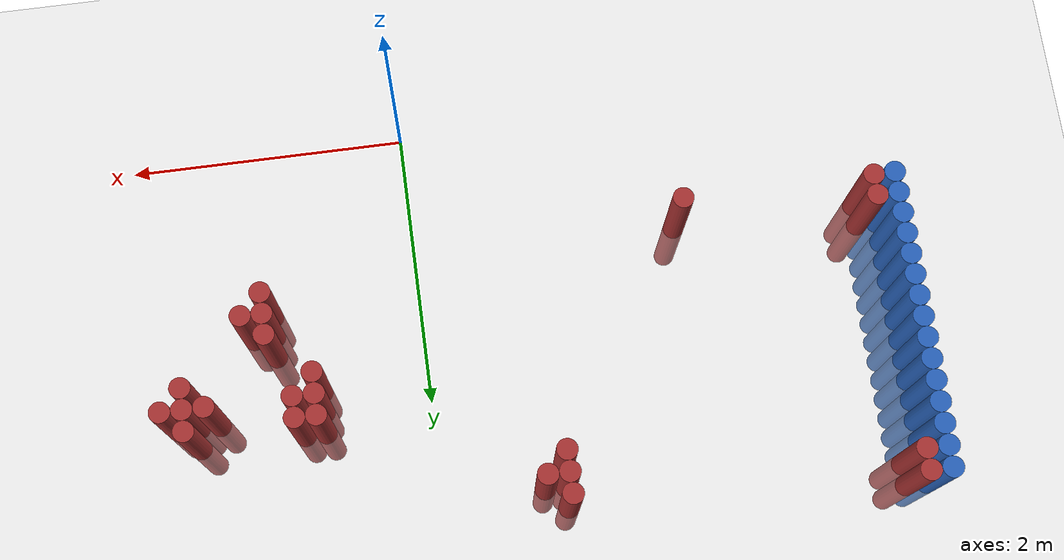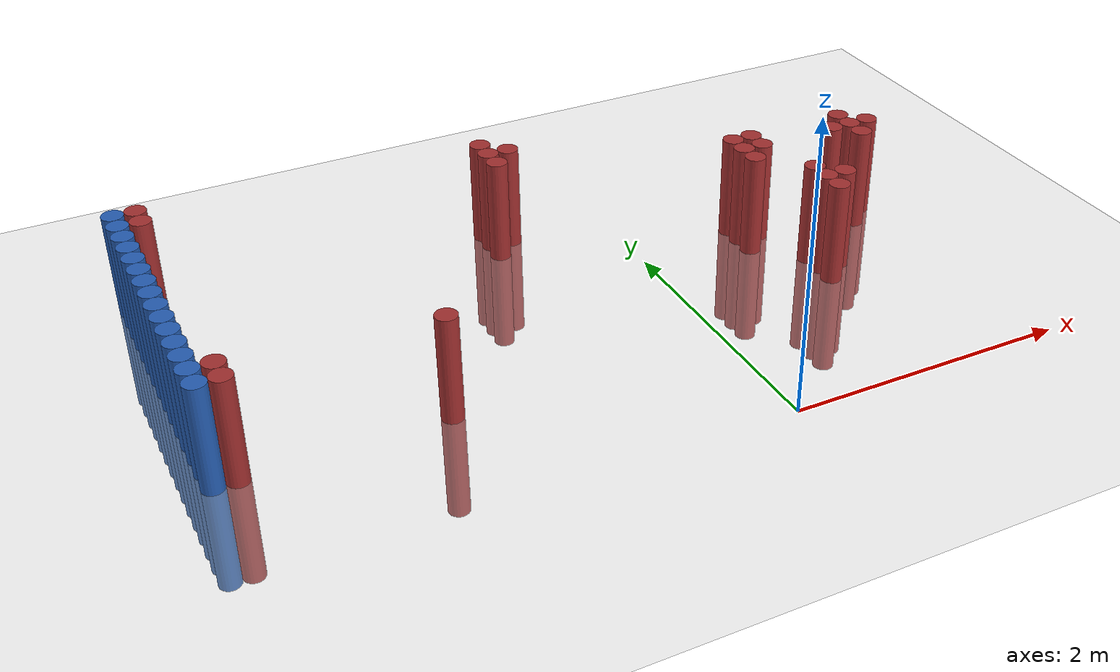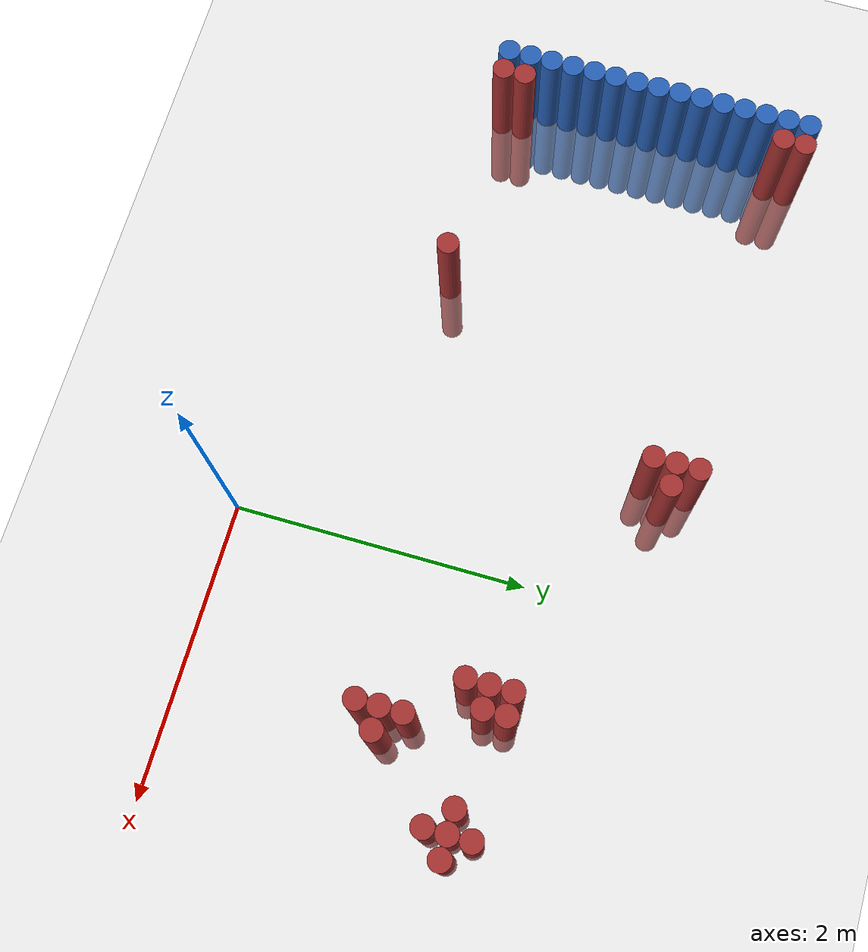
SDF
<sdf version="1.6">
 <world name="default">
  <model name="ground_plane">
   <static>1</static>
   <link name="link">
    <collision name="collision">
     <geometry><plane><normal>0 0 1</normal><size>100 100</size></plane></geometry>
     <surface><friction><ode><mu>100</mu><mu2>50</mu2></ode></friction></surface>
    </collision>
    <visual name="visual">
     <cast_shadows>0</cast_shadows>
     <geometry><plane><normal>0 0 1</normal><size>100 100</size></plane></geometry>
     <material>
      <script><uri>file://media/materials/scripts/gazebo.material</uri><name>Gazebo/Grey</name></script>
     </material>
    </visual>
   </link>
  </model>
  <model name="unit_cylinder_127">
   <static>1</static>
   <pose>-3.425000 0.925000 0.000000 0.000000 0.000000 0.000000</pose>
   <link name="link">
    <inertial>
     <mass>1</mass>
     <inertia><ixx>0.145833</ixx><ixy>0</ixy><ixz>0</ixz><iyy>0.145833</iyy><iyz>0</iyz><izz>0.125</izz></inertia>
    </inertial>
    <collision name="collision">
     <geometry><cylinder><radius>0.075000</radius><length>1.5</length></cylinder></geometry>
    </collision>
    <visual name="visual">
     <geometry><cylinder><radius>0.075000</radius><length>1.5</length></cylinder></geometry>
     <material>
      <ambient>0.152000 0.379000 0.720000 1</ambient>
      <diffuse>0.152000 0.379000 0.720000 1</diffuse>
     </material>
     <material>
      <script><name>Gazebo/Grey</name><uri>file://media/materials/scripts/gazebo.material</uri></script>
     </material>
    </visual>
   </link>
  </model>
  <model name="unit_cylinder_129">
   <static>1</static>
   <pose>-3.425000 1.075000 0.000000 0.000000 0.000000 0.000000</pose>
   <link name="link">
    <inertial>
     <mass>1</mass>
     <inertia><ixx>0.145833</ixx><ixy>0</ixy><ixz>0</ixz><iyy>0.145833</iyy><iyz>0</iyz><izz>0.125</izz></inertia>
    </inertial>
    <collision name="collision">
     <geometry><cylinder><radius>0.075000</radius><length>1.5</length></cylinder></geometry>
    </collision>
    <visual name="visual">
     <geometry><cylinder><radius>0.075000</radius><length>1.5</length></cylinder></geometry>
     <material>
      <ambient>0.152000 0.379000 0.720000 1</ambient>
      <diffuse>0.152000 0.379000 0.720000 1</diffuse>
     </material>
     <material>
      <script><name>Gazebo/Grey</name><uri>file://media/materials/scripts/gazebo.material</uri></script>
     </material>
    </visual>
   </link>
  </model>
  <model name="unit_cylinder_131">
   <static>1</static>
   <pose>-3.425000 1.225000 0.000000 0.000000 0.000000 0.000000</pose>
   <link name="link">
    <inertial>
     <mass>1</mass>
     <inertia><ixx>0.145833</ixx><ixy>0</ixy><ixz>0</ixz><iyy>0.145833</iyy><iyz>0</iyz><izz>0.125</izz></inertia>
    </inertial>
    <collision name="collision">
     <geometry><cylinder><radius>0.075000</radius><length>1.5</length></cylinder></geometry>
    </collision>
    <visual name="visual">
     <geometry><cylinder><radius>0.075000</radius><length>1.5</length></cylinder></geometry>
     <material>
      <ambient>0.152000 0.379000 0.720000 1</ambient>
      <diffuse>0.152000 0.379000 0.720000 1</diffuse>
     </material>
     <material>
      <script><name>Gazebo/Grey</name><uri>file://media/materials/scripts/gazebo.material</uri></script>
     </material>
    </visual>
   </link>
  </model>
  <model name="unit_cylinder_133">
   <static>1</static>
   <pose>-3.425000 1.375000 0.000000 0.000000 0.000000 0.000000</pose>
   <link name="link">
    <inertial>
     <mass>1</mass>
     <inertia><ixx>0.145833</ixx><ixy>0</ixy><ixz>0</ixz><iyy>0.145833</iyy><iyz>0</iyz><izz>0.125</izz></inertia>
    </inertial>
    <collision name="collision">
     <geometry><cylinder><radius>0.075000</radius><length>1.5</length></cylinder></geometry>
    </collision>
    <visual name="visual">
     <geometry><cylinder><radius>0.075000</radius><length>1.5</length></cylinder></geometry>
     <material>
      <ambient>0.152000 0.379000 0.720000 1</ambient>
      <diffuse>0.152000 0.379000 0.720000 1</diffuse>
     </material>
     <material>
      <script><name>Gazebo/Grey</name><uri>file://media/materials/scripts/gazebo.material</uri></script>
     </material>
    </visual>
   </link>
  </model>
  <model name="unit_cylinder_135">
   <static>1</static>
   <pose>-3.425000 1.525000 0.000000 0.000000 0.000000 0.000000</pose>
   <link name="link">
    <inertial>
     <mass>1</mass>
     <inertia><ixx>0.145833</ixx><ixy>0</ixy><ixz>0</ixz><iyy>0.145833</iyy><iyz>0</iyz><izz>0.125</izz></inertia>
    </inertial>
    <collision name="collision">
     <geometry><cylinder><radius>0.075000</radius><length>1.5</length></cylinder></geometry>
    </collision>
    <visual name="visual">
     <geometry><cylinder><radius>0.075000</radius><length>1.5</length></cylinder></geometry>
     <material>
      <ambient>0.152000 0.379000 0.720000 1</ambient>
      <diffuse>0.152000 0.379000 0.720000 1</diffuse>
     </material>
     <material>
      <script><name>Gazebo/Grey</name><uri>file://media/materials/scripts/gazebo.material</uri></script>
     </material>
    </visual>
   </link>
  </model>
  <model name="unit_cylinder_137">
   <static>1</static>
   <pose>-3.425000 1.675000 0.000000 0.000000 0.000000 0.000000</pose>
   <link name="link">
    <inertial>
     <mass>1</mass>
     <inertia><ixx>0.145833</ixx><ixy>0</ixy><ixz>0</ixz><iyy>0.145833</iyy><iyz>0</iyz><izz>0.125</izz></inertia>
    </inertial>
    <collision name="collision">
     <geometry><cylinder><radius>0.075000</radius><length>1.5</length></cylinder></geometry>
    </collision>
    <visual name="visual">
     <geometry><cylinder><radius>0.075000</radius><length>1.5</length></cylinder></geometry>
     <material>
      <ambient>0.152000 0.379000 0.720000 1</ambient>
      <diffuse>0.152000 0.379000 0.720000 1</diffuse>
     </material>
     <material>
      <script><name>Gazebo/Grey</name><uri>file://media/materials/scripts/gazebo.material</uri></script>
     </material>
    </visual>
   </link>
  </model>
  <model name="unit_cylinder_139">
   <static>1</static>
   <pose>-3.425000 1.825000 0.000000 0.000000 0.000000 0.000000</pose>
   <link name="link">
    <inertial>
     <mass>1</mass>
     <inertia><ixx>0.145833</ixx><ixy>0</ixy><ixz>0</ixz><iyy>0.145833</iyy><iyz>0</iyz><izz>0.125</izz></inertia>
    </inertial>
    <collision name="collision">
     <geometry><cylinder><radius>0.075000</radius><length>1.5</length></cylinder></geometry>
    </collision>
    <visual name="visual">
     <geometry><cylinder><radius>0.075000</radius><length>1.5</length></cylinder></geometry>
     <material>
      <ambient>0.152000 0.379000 0.720000 1</ambient>
      <diffuse>0.152000 0.379000 0.720000 1</diffuse>
     </material>
     <material>
      <script><name>Gazebo/Grey</name><uri>file://media/materials/scripts/gazebo.material</uri></script>
     </material>
    </visual>
   </link>
  </model>
  <model name="unit_cylinder_141">
   <static>1</static>
   <pose>-3.425000 1.975000 0.000000 0.000000 0.000000 0.000000</pose>
   <link name="link">
    <inertial>
     <mass>1</mass>
     <inertia><ixx>0.145833</ixx><ixy>0</ixy><ixz>0</ixz><iyy>0.145833</iyy><iyz>0</iyz><izz>0.125</izz></inertia>
    </inertial>
    <collision name="collision">
     <geometry><cylinder><radius>0.075000</radius><length>1.5</length></cylinder></geometry>
    </collision>
    <visual name="visual">
     <geometry><cylinder><radius>0.075000</radius><length>1.5</length></cylinder></geometry>
     <material>
      <ambient>0.152000 0.379000 0.720000 1</ambient>
      <diffuse>0.152000 0.379000 0.720000 1</diffuse>
     </material>
     <material>
      <script><name>Gazebo/Grey</name><uri>file://media/materials/scripts/gazebo.material</uri></script>
     </material>
    </visual>
   </link>
  </model>
  <model name="unit_cylinder_143">
   <static>1</static>
   <pose>-3.425000 2.125000 0.000000 0.000000 0.000000 0.000000</pose>
   <link name="link">
    <inertial>
     <mass>1</mass>
     <inertia><ixx>0.145833</ixx><ixy>0</ixy><ixz>0</ixz><iyy>0.145833</iyy><iyz>0</iyz><izz>0.125</izz></inertia>
    </inertial>
    <collision name="collision">
     <geometry><cylinder><radius>0.075000</radius><length>1.5</length></cylinder></geometry>
    </collision>
    <visual name="visual">
     <geometry><cylinder><radius>0.075000</radius><length>1.5</length></cylinder></geometry>
     <material>
      <ambient>0.152000 0.379000 0.720000 1</ambient>
      <diffuse>0.152000 0.379000 0.720000 1</diffuse>
     </material>
     <material>
      <script><name>Gazebo/Grey</name><uri>file://media/materials/scripts/gazebo.material</uri></script>
     </material>
    </visual>
   </link>
  </model>
  <model name="unit_cylinder_145">
   <static>1</static>
   <pose>-3.425000 2.275000 0.000000 0.000000 0.000000 0.000000</pose>
   <link name="link">
    <inertial>
     <mass>1</mass>
     <inertia><ixx>0.145833</ixx><ixy>0</ixy><ixz>0</ixz><iyy>0.145833</iyy><iyz>0</iyz><izz>0.125</izz></inertia>
    </inertial>
    <collision name="collision">
     <geometry><cylinder><radius>0.075000</radius><length>1.5</length></cylinder></geometry>
    </collision>
    <visual name="visual">
     <geometry><cylinder><radius>0.075000</radius><length>1.5</length></cylinder></geometry>
     <material>
      <ambient>0.152000 0.379000 0.720000 1</ambient>
      <diffuse>0.152000 0.379000 0.720000 1</diffuse>
     </material>
     <material>
      <script><name>Gazebo/Grey</name><uri>file://media/materials/scripts/gazebo.material</uri></script>
     </material>
    </visual>
   </link>
  </model>
  <model name="unit_cylinder_147">
   <static>1</static>
   <pose>-3.425000 2.425000 0.000000 0.000000 0.000000 0.000000</pose>
   <link name="link">
    <inertial>
     <mass>1</mass>
     <inertia><ixx>0.145833</ixx><ixy>0</ixy><ixz>0</ixz><iyy>0.145833</iyy><iyz>0</iyz><izz>0.125</izz></inertia>
    </inertial>
    <collision name="collision">
     <geometry><cylinder><radius>0.075000</radius><length>1.5</length></cylinder></geometry>
    </collision>
    <visual name="visual">
     <geometry><cylinder><radius>0.075000</radius><length>1.5</length></cylinder></geometry>
     <material>
      <ambient>0.152000 0.379000 0.720000 1</ambient>
      <diffuse>0.152000 0.379000 0.720000 1</diffuse>
     </material>
     <material>
      <script><name>Gazebo/Grey</name><uri>file://media/materials/scripts/gazebo.material</uri></script>
     </material>
    </visual>
   </link>
  </model>
  <model name="unit_cylinder_149">
   <static>1</static>
   <pose>-3.425000 2.575000 0.000000 0.000000 0.000000 0.000000</pose>
   <link name="link">
    <inertial>
     <mass>1</mass>
     <inertia><ixx>0.145833</ixx><ixy>0</ixy><ixz>0</ixz><iyy>0.145833</iyy><iyz>0</iyz><izz>0.125</izz></inertia>
    </inertial>
    <collision name="collision">
     <geometry><cylinder><radius>0.075000</radius><length>1.5</length></cylinder></geometry>
    </collision>
    <visual name="visual">
     <geometry><cylinder><radius>0.075000</radius><length>1.5</length></cylinder></geometry>
     <material>
      <ambient>0.152000 0.379000 0.720000 1</ambient>
      <diffuse>0.152000 0.379000 0.720000 1</diffuse>
     </material>
     <material>
      <script><name>Gazebo/Grey</name><uri>file://media/materials/scripts/gazebo.material</uri></script>
     </material>
    </visual>
   </link>
  </model>
  <model name="unit_cylinder_151">
   <static>1</static>
   <pose>-3.425000 2.725000 0.000000 0.000000 0.000000 0.000000</pose>
   <link name="link">
    <inertial>
     <mass>1</mass>
     <inertia><ixx>0.145833</ixx><ixy>0</ixy><ixz>0</ixz><iyy>0.145833</iyy><iyz>0</iyz><izz>0.125</izz></inertia>
    </inertial>
    <collision name="collision">
     <geometry><cylinder><radius>0.075000</radius><length>1.5</length></cylinder></geometry>
    </collision>
    <visual name="visual">
     <geometry><cylinder><radius>0.075000</radius><length>1.5</length></cylinder></geometry>
     <material>
      <ambient>0.152000 0.379000 0.720000 1</ambient>
      <diffuse>0.152000 0.379000 0.720000 1</diffuse>
     </material>
     <material>
      <script><name>Gazebo/Grey</name><uri>file://media/materials/scripts/gazebo.material</uri></script>
     </material>
    </visual>
   </link>
  </model>
  <model name="unit_cylinder_153">
   <static>1</static>
   <pose>-3.425000 2.875000 0.000000 0.000000 0.000000 0.000000</pose>
   <link name="link">
    <inertial>
     <mass>1</mass>
     <inertia><ixx>0.145833</ixx><ixy>0</ixy><ixz>0</ixz><iyy>0.145833</iyy><iyz>0</iyz><izz>0.125</izz></inertia>
    </inertial>
    <collision name="collision">
     <geometry><cylinder><radius>0.075000</radius><length>1.5</length></cylinder></geometry>
    </collision>
    <visual name="visual">
     <geometry><cylinder><radius>0.075000</radius><length>1.5</length></cylinder></geometry>
     <material>
      <ambient>0.152000 0.379000 0.720000 1</ambient>
      <diffuse>0.152000 0.379000 0.720000 1</diffuse>
     </material>
     <material>
      <script><name>Gazebo/Grey</name><uri>file://media/materials/scripts/gazebo.material</uri></script>
     </material>
    </visual>
   </link>
  </model>
  <model name="unit_cylinder_155">
   <static>1</static>
   <pose>-3.425000 3.025000 0.000000 0.000000 0.000000 0.000000</pose>
   <link name="link">
    <inertial>
     <mass>1</mass>
     <inertia><ixx>0.145833</ixx><ixy>0</ixy><ixz>0</ixz><iyy>0.145833</iyy><iyz>0</iyz><izz>0.125</izz></inertia>
    </inertial>
    <collision name="collision">
     <geometry><cylinder><radius>0.075000</radius><length>1.5</length></cylinder></geometry>
    </collision>
    <visual name="visual">
     <geometry><cylinder><radius>0.075000</radius><length>1.5</length></cylinder></geometry>
     <material>
      <ambient>0.152000 0.379000 0.720000 1</ambient>
      <diffuse>0.152000 0.379000 0.720000 1</diffuse>
     </material>
     <material>
      <script><name>Gazebo/Grey</name><uri>file://media/materials/scripts/gazebo.material</uri></script>
     </material>
    </visual>
   </link>
  </model>
  <model name="unit_cylinder_227">
   <static>1</static>
   <pose>-3.425000 0.925000 0.000000 0.000000 0.000000 0.000000</pose>
   <link name="link">
    <inertial>
     <mass>1</mass>
     <inertia><ixx>0.145833</ixx><ixy>0</ixy><ixz>0</ixz><iyy>0.145833</iyy><iyz>0</iyz><izz>0.125</izz></inertia>
    </inertial>
    <collision name="collision">
     <geometry><cylinder><radius>0.075000</radius><length>1.5</length></cylinder></geometry>
    </collision>
    <visual name="visual">
     <geometry><cylinder><radius>0.075000</radius><length>1.5</length></cylinder></geometry>
     <material>
      <ambient>0.152000 0.379000 0.720000 1</ambient>
      <diffuse>0.152000 0.379000 0.720000 1</diffuse>
     </material>
     <material>
      <script><name>Gazebo/Grey</name><uri>file://media/materials/scripts/gazebo.material</uri></script>
     </material>
    </visual>
   </link>
  </model>
  <model name="unit_cylinder_228">
   <static>1</static>
   <pose>-3.425000 1.075000 0.000000 0.000000 0.000000 0.000000</pose>
   <link name="link">
    <inertial>
     <mass>1</mass>
     <inertia><ixx>0.145833</ixx><ixy>0</ixy><ixz>0</ixz><iyy>0.145833</iyy><iyz>0</iyz><izz>0.125</izz></inertia>
    </inertial>
    <collision name="collision">
     <geometry><cylinder><radius>0.075000</radius><length>1.5</length></cylinder></geometry>
    </collision>
    <visual name="visual">
     <geometry><cylinder><radius>0.075000</radius><length>1.5</length></cylinder></geometry>
     <material>
      <ambient>0.152000 0.379000 0.720000 1</ambient>
      <diffuse>0.152000 0.379000 0.720000 1</diffuse>
     </material>
     <material>
      <script><name>Gazebo/Grey</name><uri>file://media/materials/scripts/gazebo.material</uri></script>
     </material>
    </visual>
   </link>
  </model>
  <model name="unit_cylinder_229">
   <static>1</static>
   <pose>-3.425000 1.225000 0.000000 0.000000 0.000000 0.000000</pose>
   <link name="link">
    <inertial>
     <mass>1</mass>
     <inertia><ixx>0.145833</ixx><ixy>0</ixy><ixz>0</ixz><iyy>0.145833</iyy><iyz>0</iyz><izz>0.125</izz></inertia>
    </inertial>
    <collision name="collision">
     <geometry><cylinder><radius>0.075000</radius><length>1.5</length></cylinder></geometry>
    </collision>
    <visual name="visual">
     <geometry><cylinder><radius>0.075000</radius><length>1.5</length></cylinder></geometry>
     <material>
      <ambient>0.152000 0.379000 0.720000 1</ambient>
      <diffuse>0.152000 0.379000 0.720000 1</diffuse>
     </material>
     <material>
      <script><name>Gazebo/Grey</name><uri>file://media/materials/scripts/gazebo.material</uri></script>
     </material>
    </visual>
   </link>
  </model>
  <model name="unit_cylinder_230">
   <static>1</static>
   <pose>-3.425000 1.375000 0.000000 0.000000 0.000000 0.000000</pose>
   <link name="link">
    <inertial>
     <mass>1</mass>
     <inertia><ixx>0.145833</ixx><ixy>0</ixy><ixz>0</ixz><iyy>0.145833</iyy><iyz>0</iyz><izz>0.125</izz></inertia>
    </inertial>
    <collision name="collision">
     <geometry><cylinder><radius>0.075000</radius><length>1.5</length></cylinder></geometry>
    </collision>
    <visual name="visual">
     <geometry><cylinder><radius>0.075000</radius><length>1.5</length></cylinder></geometry>
     <material>
      <ambient>0.152000 0.379000 0.720000 1</ambient>
      <diffuse>0.152000 0.379000 0.720000 1</diffuse>
     </material>
     <material>
      <script><name>Gazebo/Grey</name><uri>file://media/materials/scripts/gazebo.material</uri></script>
     </material>
    </visual>
   </link>
  </model>
  <model name="unit_cylinder_231">
   <static>1</static>
   <pose>-3.425000 1.525000 0.000000 0.000000 0.000000 0.000000</pose>
   <link name="link">
    <inertial>
     <mass>1</mass>
     <inertia><ixx>0.145833</ixx><ixy>0</ixy><ixz>0</ixz><iyy>0.145833</iyy><iyz>0</iyz><izz>0.125</izz></inertia>
    </inertial>
    <collision name="collision">
     <geometry><cylinder><radius>0.075000</radius><length>1.5</length></cylinder></geometry>
    </collision>
    <visual name="visual">
     <geometry><cylinder><radius>0.075000</radius><length>1.5</length></cylinder></geometry>
     <material>
      <ambient>0.152000 0.379000 0.720000 1</ambient>
      <diffuse>0.152000 0.379000 0.720000 1</diffuse>
     </material>
     <material>
      <script><name>Gazebo/Grey</name><uri>file://media/materials/scripts/gazebo.material</uri></script>
     </material>
    </visual>
   </link>
  </model>
  <model name="unit_cylinder_232">
   <static>1</static>
   <pose>-3.425000 1.675000 0.000000 0.000000 0.000000 0.000000</pose>
   <link name="link">
    <inertial>
     <mass>1</mass>
     <inertia><ixx>0.145833</ixx><ixy>0</ixy><ixz>0</ixz><iyy>0.145833</iyy><iyz>0</iyz><izz>0.125</izz></inertia>
    </inertial>
    <collision name="collision">
     <geometry><cylinder><radius>0.075000</radius><length>1.5</length></cylinder></geometry>
    </collision>
    <visual name="visual">
     <geometry><cylinder><radius>0.075000</radius><length>1.5</length></cylinder></geometry>
     <material>
      <ambient>0.152000 0.379000 0.720000 1</ambient>
      <diffuse>0.152000 0.379000 0.720000 1</diffuse>
     </material>
     <material>
      <script><name>Gazebo/Grey</name><uri>file://media/materials/scripts/gazebo.material</uri></script>
     </material>
    </visual>
   </link>
  </model>
  <model name="unit_cylinder_233">
   <static>1</static>
   <pose>-3.425000 1.825000 0.000000 0.000000 0.000000 0.000000</pose>
   <link name="link">
    <inertial>
     <mass>1</mass>
     <inertia><ixx>0.145833</ixx><ixy>0</ixy><ixz>0</ixz><iyy>0.145833</iyy><iyz>0</iyz><izz>0.125</izz></inertia>
    </inertial>
    <collision name="collision">
     <geometry><cylinder><radius>0.075000</radius><length>1.5</length></cylinder></geometry>
    </collision>
    <visual name="visual">
     <geometry><cylinder><radius>0.075000</radius><length>1.5</length></cylinder></geometry>
     <material>
      <ambient>0.152000 0.379000 0.720000 1</ambient>
      <diffuse>0.152000 0.379000 0.720000 1</diffuse>
     </material>
     <material>
      <script><name>Gazebo/Grey</name><uri>file://media/materials/scripts/gazebo.material</uri></script>
     </material>
    </visual>
   </link>
  </model>
  <model name="unit_cylinder_234">
   <static>1</static>
   <pose>-3.425000 1.975000 0.000000 0.000000 0.000000 0.000000</pose>
   <link name="link">
    <inertial>
     <mass>1</mass>
     <inertia><ixx>0.145833</ixx><ixy>0</ixy><ixz>0</ixz><iyy>0.145833</iyy><iyz>0</iyz><izz>0.125</izz></inertia>
    </inertial>
    <collision name="collision">
     <geometry><cylinder><radius>0.075000</radius><length>1.5</length></cylinder></geometry>
    </collision>
    <visual name="visual">
     <geometry><cylinder><radius>0.075000</radius><length>1.5</length></cylinder></geometry>
     <material>
      <ambient>0.152000 0.379000 0.720000 1</ambient>
      <diffuse>0.152000 0.379000 0.720000 1</diffuse>
     </material>
     <material>
      <script><name>Gazebo/Grey</name><uri>file://media/materials/scripts/gazebo.material</uri></script>
     </material>
    </visual>
   </link>
  </model>
  <model name="unit_cylinder_235">
   <static>1</static>
   <pose>-3.425000 2.125000 0.000000 0.000000 0.000000 0.000000</pose>
   <link name="link">
    <inertial>
     <mass>1</mass>
     <inertia><ixx>0.145833</ixx><ixy>0</ixy><ixz>0</ixz><iyy>0.145833</iyy><iyz>0</iyz><izz>0.125</izz></inertia>
    </inertial>
    <collision name="collision">
     <geometry><cylinder><radius>0.075000</radius><length>1.5</length></cylinder></geometry>
    </collision>
    <visual name="visual">
     <geometry><cylinder><radius>0.075000</radius><length>1.5</length></cylinder></geometry>
     <material>
      <ambient>0.152000 0.379000 0.720000 1</ambient>
      <diffuse>0.152000 0.379000 0.720000 1</diffuse>
     </material>
     <material>
      <script><name>Gazebo/Grey</name><uri>file://media/materials/scripts/gazebo.material</uri></script>
     </material>
    </visual>
   </link>
  </model>
  <model name="unit_cylinder_236">
   <static>1</static>
   <pose>-3.425000 2.275000 0.000000 0.000000 0.000000 0.000000</pose>
   <link name="link">
    <inertial>
     <mass>1</mass>
     <inertia><ixx>0.145833</ixx><ixy>0</ixy><ixz>0</ixz><iyy>0.145833</iyy><iyz>0</iyz><izz>0.125</izz></inertia>
    </inertial>
    <collision name="collision">
     <geometry><cylinder><radius>0.075000</radius><length>1.5</length></cylinder></geometry>
    </collision>
    <visual name="visual">
     <geometry><cylinder><radius>0.075000</radius><length>1.5</length></cylinder></geometry>
     <material>
      <ambient>0.152000 0.379000 0.720000 1</ambient>
      <diffuse>0.152000 0.379000 0.720000 1</diffuse>
     </material>
     <material>
      <script><name>Gazebo/Grey</name><uri>file://media/materials/scripts/gazebo.material</uri></script>
     </material>
    </visual>
   </link>
  </model>
  <model name="unit_cylinder_237">
   <static>1</static>
   <pose>-3.425000 2.425000 0.000000 0.000000 0.000000 0.000000</pose>
   <link name="link">
    <inertial>
     <mass>1</mass>
     <inertia><ixx>0.145833</ixx><ixy>0</ixy><ixz>0</ixz><iyy>0.145833</iyy><iyz>0</iyz><izz>0.125</izz></inertia>
    </inertial>
    <collision name="collision">
     <geometry><cylinder><radius>0.075000</radius><length>1.5</length></cylinder></geometry>
    </collision>
    <visual name="visual">
     <geometry><cylinder><radius>0.075000</radius><length>1.5</length></cylinder></geometry>
     <material>
      <ambient>0.152000 0.379000 0.720000 1</ambient>
      <diffuse>0.152000 0.379000 0.720000 1</diffuse>
     </material>
     <material>
      <script><name>Gazebo/Grey</name><uri>file://media/materials/scripts/gazebo.material</uri></script>
     </material>
    </visual>
   </link>
  </model>
  <model name="unit_cylinder_238">
   <static>1</static>
   <pose>-3.425000 2.575000 0.000000 0.000000 0.000000 0.000000</pose>
   <link name="link">
    <inertial>
     <mass>1</mass>
     <inertia><ixx>0.145833</ixx><ixy>0</ixy><ixz>0</ixz><iyy>0.145833</iyy><iyz>0</iyz><izz>0.125</izz></inertia>
    </inertial>
    <collision name="collision">
     <geometry><cylinder><radius>0.075000</radius><length>1.5</length></cylinder></geometry>
    </collision>
    <visual name="visual">
     <geometry><cylinder><radius>0.075000</radius><length>1.5</length></cylinder></geometry>
     <material>
      <ambient>0.152000 0.379000 0.720000 1</ambient>
      <diffuse>0.152000 0.379000 0.720000 1</diffuse>
     </material>
     <material>
      <script><name>Gazebo/Grey</name><uri>file://media/materials/scripts/gazebo.material</uri></script>
     </material>
    </visual>
   </link>
  </model>
  <model name="unit_cylinder_239">
   <static>1</static>
   <pose>-3.425000 2.725000 0.000000 0.000000 0.000000 0.000000</pose>
   <link name="link">
    <inertial>
     <mass>1</mass>
     <inertia><ixx>0.145833</ixx><ixy>0</ixy><ixz>0</ixz><iyy>0.145833</iyy><iyz>0</iyz><izz>0.125</izz></inertia>
    </inertial>
    <collision name="collision">
     <geometry><cylinder><radius>0.075000</radius><length>1.5</length></cylinder></geometry>
    </collision>
    <visual name="visual">
     <geometry><cylinder><radius>0.075000</radius><length>1.5</length></cylinder></geometry>
     <material>
      <ambient>0.152000 0.379000 0.720000 1</ambient>
      <diffuse>0.152000 0.379000 0.720000 1</diffuse>
     </material>
     <material>
      <script><name>Gazebo/Grey</name><uri>file://media/materials/scripts/gazebo.material</uri></script>
     </material>
    </visual>
   </link>
  </model>
  <model name="unit_cylinder_240">
   <static>1</static>
   <pose>-3.425000 2.875000 0.000000 0.000000 0.000000 0.000000</pose>
   <link name="link">
    <inertial>
     <mass>1</mass>
     <inertia><ixx>0.145833</ixx><ixy>0</ixy><ixz>0</ixz><iyy>0.145833</iyy><iyz>0</iyz><izz>0.125</izz></inertia>
    </inertial>
    <collision name="collision">
     <geometry><cylinder><radius>0.075000</radius><length>1.5</length></cylinder></geometry>
    </collision>
    <visual name="visual">
     <geometry><cylinder><radius>0.075000</radius><length>1.5</length></cylinder></geometry>
     <material>
      <ambient>0.152000 0.379000 0.720000 1</ambient>
      <diffuse>0.152000 0.379000 0.720000 1</diffuse>
     </material>
     <material>
      <script><name>Gazebo/Grey</name><uri>file://media/materials/scripts/gazebo.material</uri></script>
     </material>
    </visual>
   </link>
  </model>
  <model name="unit_cylinder_241">
   <static>1</static>
   <pose>-3.425000 3.025000 0.000000 0.000000 0.000000 0.000000</pose>
   <link name="link">
    <inertial>
     <mass>1</mass>
     <inertia><ixx>0.145833</ixx><ixy>0</ixy><ixz>0</ixz><iyy>0.145833</iyy><iyz>0</iyz><izz>0.125</izz></inertia>
    </inertial>
    <collision name="collision">
     <geometry><cylinder><radius>0.075000</radius><length>1.5</length></cylinder></geometry>
    </collision>
    <visual name="visual">
     <geometry><cylinder><radius>0.075000</radius><length>1.5</length></cylinder></geometry>
     <material>
      <ambient>0.152000 0.379000 0.720000 1</ambient>
      <diffuse>0.152000 0.379000 0.720000 1</diffuse>
     </material>
     <material>
      <script><name>Gazebo/Grey</name><uri>file://media/materials/scripts/gazebo.material</uri></script>
     </material>
    </visual>
   </link>
  </model>
  <model name="unit_cylinder_268">
   <static>1</static>
   <pose>-3.275000 0.925000 0.000000 0.000000 0.000000 0.000000</pose>
   <link name="link">
    <inertial>
     <mass>1</mass>
     <inertia><ixx>0.145833</ixx><ixy>0</ixy><ixz>0</ixz><iyy>0.145833</iyy><iyz>0</iyz><izz>0.125</izz></inertia>
    </inertial>
    <collision name="collision">
     <geometry><cylinder><radius>0.075000</radius><length>1.5</length></cylinder></geometry>
    </collision>
    <visual name="visual">
     <geometry><cylinder><radius>0.075000</radius><length>1.5</length></cylinder></geometry>
     <material>
      <ambient>0.648000 0.192000 0.192000 1</ambient>
      <diffuse>0.648000 0.192000 0.192000 1</diffuse>
     </material>
     <material>
      <script><name>Gazebo/Grey</name><uri>file://media/materials/scripts/gazebo.material</uri></script>
     </material>
    </visual>
   </link>
  </model>
  <model name="unit_cylinder_269">
   <static>1</static>
   <pose>-3.275000 1.075000 0.000000 0.000000 0.000000 0.000000</pose>
   <link name="link">
    <inertial>
     <mass>1</mass>
     <inertia><ixx>0.145833</ixx><ixy>0</ixy><ixz>0</ixz><iyy>0.145833</iyy><iyz>0</iyz><izz>0.125</izz></inertia>
    </inertial>
    <collision name="collision">
     <geometry><cylinder><radius>0.075000</radius><length>1.5</length></cylinder></geometry>
    </collision>
    <visual name="visual">
     <geometry><cylinder><radius>0.075000</radius><length>1.5</length></cylinder></geometry>
     <material>
      <ambient>0.648000 0.192000 0.192000 1</ambient>
      <diffuse>0.648000 0.192000 0.192000 1</diffuse>
     </material>
     <material>
      <script><name>Gazebo/Grey</name><uri>file://media/materials/scripts/gazebo.material</uri></script>
     </material>
    </visual>
   </link>
  </model>
  <model name="unit_cylinder_270">
   <static>1</static>
   <pose>-3.275000 2.875000 0.000000 0.000000 0.000000 0.000000</pose>
   <link name="link">
    <inertial>
     <mass>1</mass>
     <inertia><ixx>0.145833</ixx><ixy>0</ixy><ixz>0</ixz><iyy>0.145833</iyy><iyz>0</iyz><izz>0.125</izz></inertia>
    </inertial>
    <collision name="collision">
     <geometry><cylinder><radius>0.075000</radius><length>1.5</length></cylinder></geometry>
    </collision>
    <visual name="visual">
     <geometry><cylinder><radius>0.075000</radius><length>1.5</length></cylinder></geometry>
     <material>
      <ambient>0.648000 0.192000 0.192000 1</ambient>
      <diffuse>0.648000 0.192000 0.192000 1</diffuse>
     </material>
     <material>
      <script><name>Gazebo/Grey</name><uri>file://media/materials/scripts/gazebo.material</uri></script>
     </material>
    </visual>
   </link>
  </model>
  <model name="unit_cylinder_271">
   <static>1</static>
   <pose>-3.275000 3.025000 0.000000 0.000000 0.000000 0.000000</pose>
   <link name="link">
    <inertial>
     <mass>1</mass>
     <inertia><ixx>0.145833</ixx><ixy>0</ixy><ixz>0</ixz><iyy>0.145833</iyy><iyz>0</iyz><izz>0.125</izz></inertia>
    </inertial>
    <collision name="collision">
     <geometry><cylinder><radius>0.075000</radius><length>1.5</length></cylinder></geometry>
    </collision>
    <visual name="visual">
     <geometry><cylinder><radius>0.075000</radius><length>1.5</length></cylinder></geometry>
     <material>
      <ambient>0.648000 0.192000 0.192000 1</ambient>
      <diffuse>0.648000 0.192000 0.192000 1</diffuse>
     </material>
     <material>
      <script><name>Gazebo/Grey</name><uri>file://media/materials/scripts/gazebo.material</uri></script>
     </material>
    </visual>
   </link>
  </model>
  <model name="unit_cylinder_305">
   <static>1</static>
   <pose>-1.925000 0.925000 0.000000 0.000000 0.000000 0.000000</pose>
   <link name="link">
    <inertial>
     <mass>1</mass>
     <inertia><ixx>0.145833</ixx><ixy>0</ixy><ixz>0</ixz><iyy>0.145833</iyy><iyz>0</iyz><izz>0.125</izz></inertia>
    </inertial>
    <collision name="collision">
     <geometry><cylinder><radius>0.075000</radius><length>1.5</length></cylinder></geometry>
    </collision>
    <visual name="visual">
     <geometry><cylinder><radius>0.075000</radius><length>1.5</length></cylinder></geometry>
     <material>
      <ambient>0.648000 0.192000 0.192000 1</ambient>
      <diffuse>0.648000 0.192000 0.192000 1</diffuse>
     </material>
     <material>
      <script><name>Gazebo/Grey</name><uri>file://media/materials/scripts/gazebo.material</uri></script>
     </material>
    </visual>
   </link>
  </model>
  <model name="unit_cylinder_307">
   <static>1</static>
   <pose>-0.875000 2.575000 0.000000 0.000000 0.000000 0.000000</pose>
   <link name="link">
    <inertial>
     <mass>1</mass>
     <inertia><ixx>0.145833</ixx><ixy>0</ixy><ixz>0</ixz><iyy>0.145833</iyy><iyz>0</iyz><izz>0.125</izz></inertia>
    </inertial>
    <collision name="collision">
     <geometry><cylinder><radius>0.075000</radius><length>1.5</length></cylinder></geometry>
    </collision>
    <visual name="visual">
     <geometry><cylinder><radius>0.075000</radius><length>1.5</length></cylinder></geometry>
     <material>
      <ambient>0.648000 0.192000 0.192000 1</ambient>
      <diffuse>0.648000 0.192000 0.192000 1</diffuse>
     </material>
     <material>
      <script><name>Gazebo/Grey</name><uri>file://media/materials/scripts/gazebo.material</uri></script>
     </material>
    </visual>
   </link>
  </model>
  <model name="unit_cylinder_308">
   <static>1</static>
   <pose>-0.875000 2.725000 0.000000 0.000000 0.000000 0.000000</pose>
   <link name="link">
    <inertial>
     <mass>1</mass>
     <inertia><ixx>0.145833</ixx><ixy>0</ixy><ixz>0</ixz><iyy>0.145833</iyy><iyz>0</iyz><izz>0.125</izz></inertia>
    </inertial>
    <collision name="collision">
     <geometry><cylinder><radius>0.075000</radius><length>1.5</length></cylinder></geometry>
    </collision>
    <visual name="visual">
     <geometry><cylinder><radius>0.075000</radius><length>1.5</length></cylinder></geometry>
     <material>
      <ambient>0.648000 0.192000 0.192000 1</ambient>
      <diffuse>0.648000 0.192000 0.192000 1</diffuse>
     </material>
     <material>
      <script><name>Gazebo/Grey</name><uri>file://media/materials/scripts/gazebo.material</uri></script>
     </material>
    </visual>
   </link>
  </model>
  <model name="unit_cylinder_309">
   <static>1</static>
   <pose>-0.875000 2.875000 0.000000 0.000000 0.000000 0.000000</pose>
   <link name="link">
    <inertial>
     <mass>1</mass>
     <inertia><ixx>0.145833</ixx><ixy>0</ixy><ixz>0</ixz><iyy>0.145833</iyy><iyz>0</iyz><izz>0.125</izz></inertia>
    </inertial>
    <collision name="collision">
     <geometry><cylinder><radius>0.075000</radius><length>1.5</length></cylinder></geometry>
    </collision>
    <visual name="visual">
     <geometry><cylinder><radius>0.075000</radius><length>1.5</length></cylinder></geometry>
     <material>
      <ambient>0.648000 0.192000 0.192000 1</ambient>
      <diffuse>0.648000 0.192000 0.192000 1</diffuse>
     </material>
     <material>
      <script><name>Gazebo/Grey</name><uri>file://media/materials/scripts/gazebo.material</uri></script>
     </material>
    </visual>
   </link>
  </model>
  <model name="unit_cylinder_310">
   <static>1</static>
   <pose>-0.725000 2.725000 0.000000 0.000000 0.000000 0.000000</pose>
   <link name="link">
    <inertial>
     <mass>1</mass>
     <inertia><ixx>0.145833</ixx><ixy>0</ixy><ixz>0</ixz><iyy>0.145833</iyy><iyz>0</iyz><izz>0.125</izz></inertia>
    </inertial>
    <collision name="collision">
     <geometry><cylinder><radius>0.075000</radius><length>1.5</length></cylinder></geometry>
    </collision>
    <visual name="visual">
     <geometry><cylinder><radius>0.075000</radius><length>1.5</length></cylinder></geometry>
     <material>
      <ambient>0.648000 0.192000 0.192000 1</ambient>
      <diffuse>0.648000 0.192000 0.192000 1</diffuse>
     </material>
     <material>
      <script><name>Gazebo/Grey</name><uri>file://media/materials/scripts/gazebo.material</uri></script>
     </material>
    </visual>
   </link>
  </model>
  <model name="unit_cylinder_314">
   <static>1</static>
   <pose>0.775000 1.825000 0.000000 0.000000 0.000000 0.000000</pose>
   <link name="link">
    <inertial>
     <mass>1</mass>
     <inertia><ixx>0.145833</ixx><ixy>0</ixy><ixz>0</ixz><iyy>0.145833</iyy><iyz>0</iyz><izz>0.125</izz></inertia>
    </inertial>
    <collision name="collision">
     <geometry><cylinder><radius>0.075000</radius><length>1.5</length></cylinder></geometry>
    </collision>
    <visual name="visual">
     <geometry><cylinder><radius>0.075000</radius><length>1.5</length></cylinder></geometry>
     <material>
      <ambient>0.648000 0.192000 0.192000 1</ambient>
      <diffuse>0.648000 0.192000 0.192000 1</diffuse>
     </material>
     <material>
      <script><name>Gazebo/Grey</name><uri>file://media/materials/scripts/gazebo.material</uri></script>
     </material>
    </visual>
   </link>
  </model>
  <model name="unit_cylinder_315">
   <static>1</static>
   <pose>0.775000 1.975000 0.000000 0.000000 0.000000 0.000000</pose>
   <link name="link">
    <inertial>
     <mass>1</mass>
     <inertia><ixx>0.145833</ixx><ixy>0</ixy><ixz>0</ixz><iyy>0.145833</iyy><iyz>0</iyz><izz>0.125</izz></inertia>
    </inertial>
    <collision name="collision">
     <geometry><cylinder><radius>0.075000</radius><length>1.5</length></cylinder></geometry>
    </collision>
    <visual name="visual">
     <geometry><cylinder><radius>0.075000</radius><length>1.5</length></cylinder></geometry>
     <material>
      <ambient>0.648000 0.192000 0.192000 1</ambient>
      <diffuse>0.648000 0.192000 0.192000 1</diffuse>
     </material>
     <material>
      <script><name>Gazebo/Grey</name><uri>file://media/materials/scripts/gazebo.material</uri></script>
     </material>
    </visual>
   </link>
  </model>
  <model name="unit_cylinder_316">
   <static>1</static>
   <pose>0.775000 2.125000 0.000000 0.000000 0.000000 0.000000</pose>
   <link name="link">
    <inertial>
     <mass>1</mass>
     <inertia><ixx>0.145833</ixx><ixy>0</ixy><ixz>0</ixz><iyy>0.145833</iyy><iyz>0</iyz><izz>0.125</izz></inertia>
    </inertial>
    <collision name="collision">
     <geometry><cylinder><radius>0.075000</radius><length>1.5</length></cylinder></geometry>
    </collision>
    <visual name="visual">
     <geometry><cylinder><radius>0.075000</radius><length>1.5</length></cylinder></geometry>
     <material>
      <ambient>0.648000 0.192000 0.192000 1</ambient>
      <diffuse>0.648000 0.192000 0.192000 1</diffuse>
     </material>
     <material>
      <script><name>Gazebo/Grey</name><uri>file://media/materials/scripts/gazebo.material</uri></script>
     </material>
    </visual>
   </link>
  </model>
  <model name="unit_cylinder_317">
   <static>1</static>
   <pose>0.925000 1.975000 0.000000 0.000000 0.000000 0.000000</pose>
   <link name="link">
    <inertial>
     <mass>1</mass>
     <inertia><ixx>0.145833</ixx><ixy>0</ixy><ixz>0</ixz><iyy>0.145833</iyy><iyz>0</iyz><izz>0.125</izz></inertia>
    </inertial>
    <collision name="collision">
     <geometry><cylinder><radius>0.075000</radius><length>1.5</length></cylinder></geometry>
    </collision>
    <visual name="visual">
     <geometry><cylinder><radius>0.075000</radius><length>1.5</length></cylinder></geometry>
     <material>
      <ambient>0.648000 0.192000 0.192000 1</ambient>
      <diffuse>0.648000 0.192000 0.192000 1</diffuse>
     </material>
     <material>
      <script><name>Gazebo/Grey</name><uri>file://media/materials/scripts/gazebo.material</uri></script>
     </material>
    </visual>
   </link>
  </model>
  <model name="unit_cylinder_318">
   <static>1</static>
   <pose>0.925000 2.125000 0.000000 0.000000 0.000000 0.000000</pose>
   <link name="link">
    <inertial>
     <mass>1</mass>
     <inertia><ixx>0.145833</ixx><ixy>0</ixy><ixz>0</ixz><iyy>0.145833</iyy><iyz>0</iyz><izz>0.125</izz></inertia>
    </inertial>
    <collision name="collision">
     <geometry><cylinder><radius>0.075000</radius><length>1.5</length></cylinder></geometry>
    </collision>
    <visual name="visual">
     <geometry><cylinder><radius>0.075000</radius><length>1.5</length></cylinder></geometry>
     <material>
      <ambient>0.648000 0.192000 0.192000 1</ambient>
      <diffuse>0.648000 0.192000 0.192000 1</diffuse>
     </material>
     <material>
      <script><name>Gazebo/Grey</name><uri>file://media/materials/scripts/gazebo.material</uri></script>
     </material>
    </visual>
   </link>
  </model>
  <model name="unit_cylinder_319">
   <static>1</static>
   <pose>1.075000 1.225000 0.000000 0.000000 0.000000 0.000000</pose>
   <link name="link">
    <inertial>
     <mass>1</mass>
     <inertia><ixx>0.145833</ixx><ixy>0</ixy><ixz>0</ixz><iyy>0.145833</iyy><iyz>0</iyz><izz>0.125</izz></inertia>
    </inertial>
    <collision name="collision">
     <geometry><cylinder><radius>0.075000</radius><length>1.5</length></cylinder></geometry>
    </collision>
    <visual name="visual">
     <geometry><cylinder><radius>0.075000</radius><length>1.5</length></cylinder></geometry>
     <material>
      <ambient>0.648000 0.192000 0.192000 1</ambient>
      <diffuse>0.648000 0.192000 0.192000 1</diffuse>
     </material>
     <material>
      <script><name>Gazebo/Grey</name><uri>file://media/materials/scripts/gazebo.material</uri></script>
     </material>
    </visual>
   </link>
  </model>
  <model name="unit_cylinder_320">
   <static>1</static>
   <pose>1.075000 1.375000 0.000000 0.000000 0.000000 0.000000</pose>
   <link name="link">
    <inertial>
     <mass>1</mass>
     <inertia><ixx>0.145833</ixx><ixy>0</ixy><ixz>0</ixz><iyy>0.145833</iyy><iyz>0</iyz><izz>0.125</izz></inertia>
    </inertial>
    <collision name="collision">
     <geometry><cylinder><radius>0.075000</radius><length>1.5</length></cylinder></geometry>
    </collision>
    <visual name="visual">
     <geometry><cylinder><radius>0.075000</radius><length>1.5</length></cylinder></geometry>
     <material>
      <ambient>0.648000 0.192000 0.192000 1</ambient>
      <diffuse>0.648000 0.192000 0.192000 1</diffuse>
     </material>
     <material>
      <script><name>Gazebo/Grey</name><uri>file://media/materials/scripts/gazebo.material</uri></script>
     </material>
    </visual>
   </link>
  </model>
  <model name="unit_cylinder_321">
   <static>1</static>
   <pose>1.075000 1.525000 0.000000 0.000000 0.000000 0.000000</pose>
   <link name="link">
    <inertial>
     <mass>1</mass>
     <inertia><ixx>0.145833</ixx><ixy>0</ixy><ixz>0</ixz><iyy>0.145833</iyy><iyz>0</iyz><izz>0.125</izz></inertia>
    </inertial>
    <collision name="collision">
     <geometry><cylinder><radius>0.075000</radius><length>1.5</length></cylinder></geometry>
    </collision>
    <visual name="visual">
     <geometry><cylinder><radius>0.075000</radius><length>1.5</length></cylinder></geometry>
     <material>
      <ambient>0.648000 0.192000 0.192000 1</ambient>
      <diffuse>0.648000 0.192000 0.192000 1</diffuse>
     </material>
     <material>
      <script><name>Gazebo/Grey</name><uri>file://media/materials/scripts/gazebo.material</uri></script>
     </material>
    </visual>
   </link>
  </model>
  <model name="unit_cylinder_323">
   <static>1</static>
   <pose>1.225000 1.375000 0.000000 0.000000 0.000000 0.000000</pose>
   <link name="link">
    <inertial>
     <mass>1</mass>
     <inertia><ixx>0.145833</ixx><ixy>0</ixy><ixz>0</ixz><iyy>0.145833</iyy><iyz>0</iyz><izz>0.125</izz></inertia>
    </inertial>
    <collision name="collision">
     <geometry><cylinder><radius>0.075000</radius><length>1.5</length></cylinder></geometry>
    </collision>
    <visual name="visual">
     <geometry><cylinder><radius>0.075000</radius><length>1.5</length></cylinder></geometry>
     <material>
      <ambient>0.648000 0.192000 0.192000 1</ambient>
      <diffuse>0.648000 0.192000 0.192000 1</diffuse>
     </material>
     <material>
      <script><name>Gazebo/Grey</name><uri>file://media/materials/scripts/gazebo.material</uri></script>
     </material>
    </visual>
   </link>
  </model>
  <model name="unit_cylinder_329">
   <static>1</static>
   <pose>1.525000 1.975000 0.000000 0.000000 0.000000 0.000000</pose>
   <link name="link">
    <inertial>
     <mass>1</mass>
     <inertia><ixx>0.145833</ixx><ixy>0</ixy><ixz>0</ixz><iyy>0.145833</iyy><iyz>0</iyz><izz>0.125</izz></inertia>
    </inertial>
    <collision name="collision">
     <geometry><cylinder><radius>0.075000</radius><length>1.5</length></cylinder></geometry>
    </collision>
    <visual name="visual">
     <geometry><cylinder><radius>0.075000</radius><length>1.5</length></cylinder></geometry>
     <material>
      <ambient>0.648000 0.192000 0.192000 1</ambient>
      <diffuse>0.648000 0.192000 0.192000 1</diffuse>
     </material>
     <material>
      <script><name>Gazebo/Grey</name><uri>file://media/materials/scripts/gazebo.material</uri></script>
     </material>
    </visual>
   </link>
  </model>
  <model name="unit_cylinder_331">
   <static>1</static>
   <pose>1.675000 1.825000 0.000000 0.000000 0.000000 0.000000</pose>
   <link name="link">
    <inertial>
     <mass>1</mass>
     <inertia><ixx>0.145833</ixx><ixy>0</ixy><ixz>0</ixz><iyy>0.145833</iyy><iyz>0</iyz><izz>0.125</izz></inertia>
    </inertial>
    <collision name="collision">
     <geometry><cylinder><radius>0.075000</radius><length>1.5</length></cylinder></geometry>
    </collision>
    <visual name="visual">
     <geometry><cylinder><radius>0.075000</radius><length>1.5</length></cylinder></geometry>
     <material>
      <ambient>0.648000 0.192000 0.192000 1</ambient>
      <diffuse>0.648000 0.192000 0.192000 1</diffuse>
     </material>
     <material>
      <script><name>Gazebo/Grey</name><uri>file://media/materials/scripts/gazebo.material</uri></script>
     </material>
    </visual>
   </link>
  </model>
  <model name="unit_cylinder_332">
   <static>1</static>
   <pose>1.675000 1.975000 0.000000 0.000000 0.000000 0.000000</pose>
   <link name="link">
    <inertial>
     <mass>1</mass>
     <inertia><ixx>0.145833</ixx><ixy>0</ixy><ixz>0</ixz><iyy>0.145833</iyy><iyz>0</iyz><izz>0.125</izz></inertia>
    </inertial>
    <collision name="collision">
     <geometry><cylinder><radius>0.075000</radius><length>1.5</length></cylinder></geometry>
    </collision>
    <visual name="visual">
     <geometry><cylinder><radius>0.075000</radius><length>1.5</length></cylinder></geometry>
     <material>
      <ambient>0.648000 0.192000 0.192000 1</ambient>
      <diffuse>0.648000 0.192000 0.192000 1</diffuse>
     </material>
     <material>
      <script><name>Gazebo/Grey</name><uri>file://media/materials/scripts/gazebo.material</uri></script>
     </material>
    </visual>
   </link>
  </model>
  <model name="unit_cylinder_333">
   <static>1</static>
   <pose>1.675000 2.125000 0.000000 0.000000 0.000000 0.000000</pose>
   <link name="link">
    <inertial>
     <mass>1</mass>
     <inertia><ixx>0.145833</ixx><ixy>0</ixy><ixz>0</ixz><iyy>0.145833</iyy><iyz>0</iyz><izz>0.125</izz></inertia>
    </inertial>
    <collision name="collision">
     <geometry><cylinder><radius>0.075000</radius><length>1.5</length></cylinder></geometry>
    </collision>
    <visual name="visual">
     <geometry><cylinder><radius>0.075000</radius><length>1.5</length></cylinder></geometry>
     <material>
      <ambient>0.648000 0.192000 0.192000 1</ambient>
      <diffuse>0.648000 0.192000 0.192000 1</diffuse>
     </material>
     <material>
      <script><name>Gazebo/Grey</name><uri>file://media/materials/scripts/gazebo.material</uri></script>
     </material>
    </visual>
   </link>
  </model>
  <model name="unit_cylinder_335">
   <static>1</static>
   <pose>1.825000 1.975000 0.000000 0.000000 0.000000 0.000000</pose>
   <link name="link">
    <inertial>
     <mass>1</mass>
     <inertia><ixx>0.145833</ixx><ixy>0</ixy><ixz>0</ixz><iyy>0.145833</iyy><iyz>0</iyz><izz>0.125</izz></inertia>
    </inertial>
    <collision name="collision">
     <geometry><cylinder><radius>0.075000</radius><length>1.5</length></cylinder></geometry>
    </collision>
    <visual name="visual">
     <geometry><cylinder><radius>0.075000</radius><length>1.5</length></cylinder></geometry>
     <material>
      <ambient>0.648000 0.192000 0.192000 1</ambient>
      <diffuse>0.648000 0.192000 0.192000 1</diffuse>
     </material>
     <material>
      <script><name>Gazebo/Grey</name><uri>file://media/materials/scripts/gazebo.material</uri></script>
     </material>
    </visual>
   </link>
  </model>
 </world>
</sdf>
